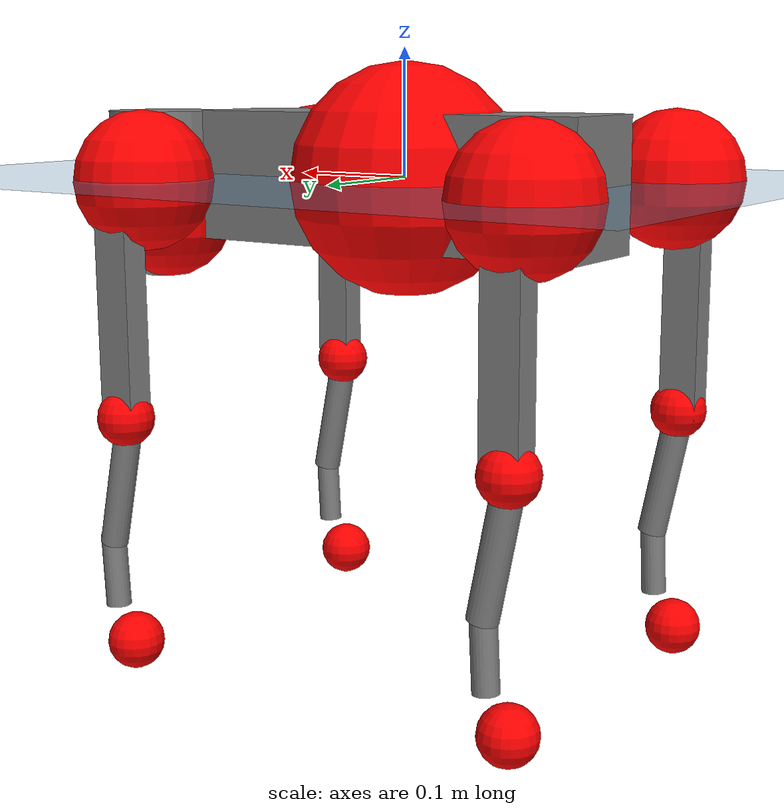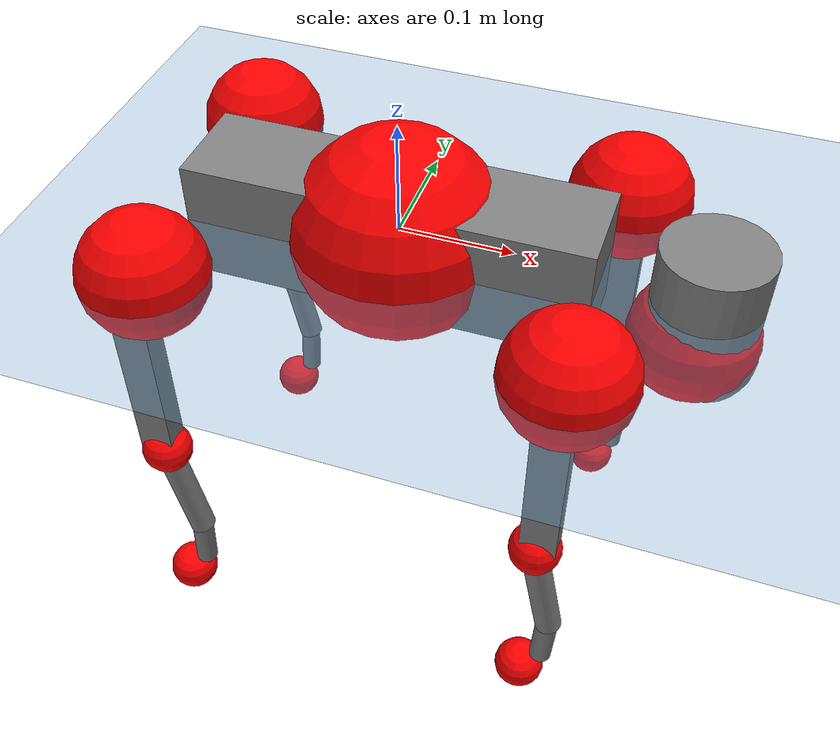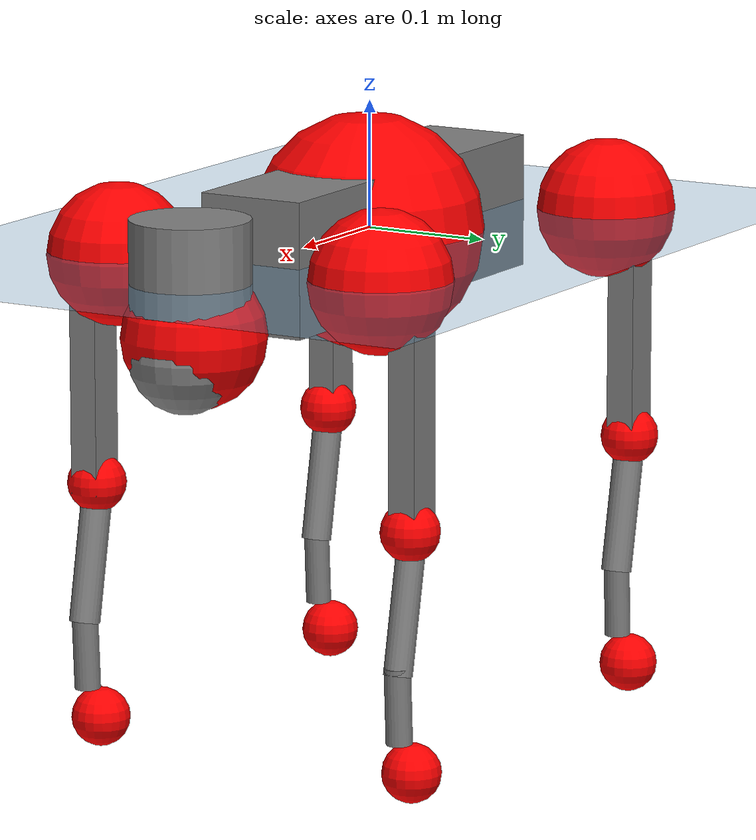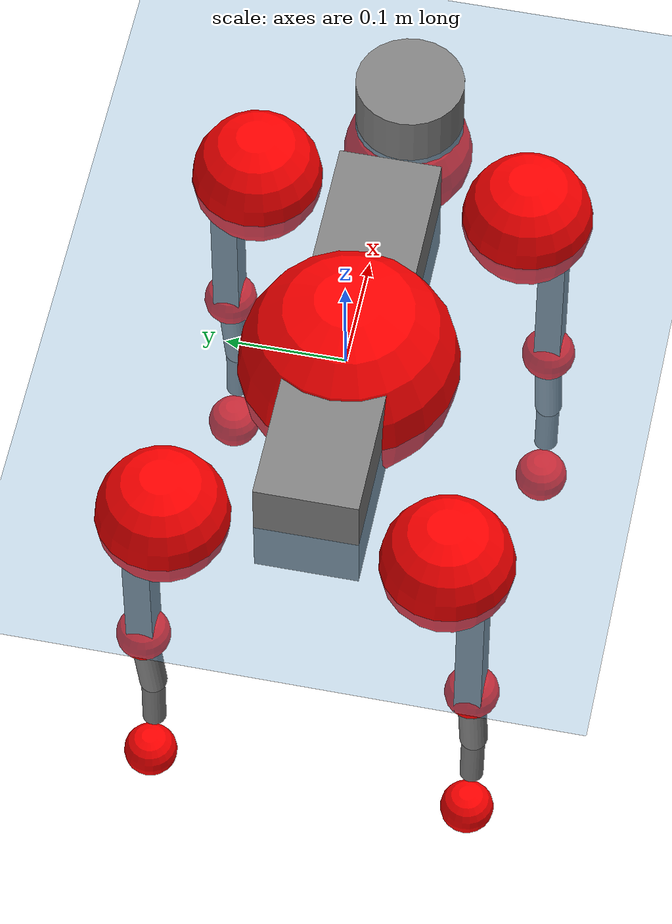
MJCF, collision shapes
<mujoco model="go2">
  <compiler angle="radian" assetdir="assets" balanceinertia="true" inertiafromgeom="false"/>

  <option timestep="0.005" density="1.2" viscosity="2e-05"/>

  <size nkey="1"/>

  <visual>
    <quality shadowsize="8192"/>
    <map shadowclip="0.5"/>
  </visual>

  <default>
    <default class="/">
      <geom contype="0" conaffinity="0" group="1" solref="-1000 -80"/>
      <site size="0.01 0.005 0.005" group="5"/>
      <general forcelimited="true" biastype="affine" gainprm="20" biasprm="0 -20 -0.5"/>
      <default class="go2">
        <joint armature="0.01" damping="0.01" frictionloss="0.2"/>
        <geom condim="1" margin="0.001"/>
        <default class="visual">
          <geom type="mesh" group="2"/>
        </default>
        <default class="collision">
          <geom group="3"/>
          <default class="foot">
            <geom size="0.022 0 0" condim="6" priority="1" friction="0.8 0.02 0.01" solimp="0.015 1 0.022"/>
          </default>
        </default>
        <default class="reward_collision_sphere">
          <geom group="5" rgba="1 0 0 1"/>
        </default>
      </default>
    </default>
  </default>

  <asset>
    <texture type="skybox" colorspace="auto" name="//unnamed_texture_0" builtin="gradient" rgb1="0.95 0.95 0.95" rgb2="0.95 0.95 0.95" width="100" height="600"/>
    <texture type="2d" colorspace="auto" name="texplane" builtin="checker" rgb1="0.345 0.575 0.748" rgb2="0.345 0.575 0.748" markrgb="1 1 1" width="512" height="512"/>
    <material name="MatPlane" class="/" texture="texplane" texuniform="true" texrepeat="2 2" specular="0.9"/>
    <material name="metal" class="/" rgba="0.9 0.95 0.95 1"/>
    <material name="black" class="/" rgba="0 0 0 1"/>
    <material name="white" class="/"/>
    <material name="gray" class="/" rgba="0.671705 0.692426 0.77427 1"/>
    <mesh name="base_0" class="/" file="base_0.obj"/>
    <mesh name="base_1" class="/" file="base_1.obj"/>
    <mesh name="base_2" class="/" file="base_2.obj"/>
    <mesh name="base_3" class="/" file="base_3.obj"/>
    <mesh name="base_4" class="/" file="base_4.obj"/>
    <mesh name="hip_0" class="/" file="hip_0.obj"/>
    <mesh name="hip_1" class="/" file="hip_1.obj"/>
    <mesh name="thigh_0" class="/" file="thigh_0.obj"/>
    <mesh name="thigh_1" class="/" file="thigh_1.obj"/>
    <mesh name="thigh_mirror_0" class="/" file="thigh_mirror_0.obj"/>
    <mesh name="thigh_mirror_1" class="/" file="thigh_mirror_1.obj"/>
    <mesh name="calf_0" class="/" file="calf_0.obj"/>
    <mesh name="calf_1" class="/" file="calf_1.obj"/>
    <mesh name="calf_mirror_0" class="/" file="calf_mirror_0.obj"/>
    <mesh name="calf_mirror_1" class="/" file="calf_mirror_1.obj"/>
    <mesh name="foot" class="/" file="foot.obj"/>
  </asset>

  <worldbody>
    <geom name="floor" class="/" size="100 100 0.125" type="plane" group="0" material="MatPlane"/>
    <light name="toplight_shadow" class="/" pos="0 0 5" dir="0.0990148 0.0990148 -0.990148" type="directional" ambient="0.04 0.04 0.04" diffuse="0.55 0.55 0.55" specular="0.12 0.12 0.12"/>
    <light name="toplight_fill" class="/" pos="0 0 5" dir="0.0990148 0.0990148 -0.990148" type="directional" castshadow="false" ambient="0.04 0.04 0.04" diffuse="0.3 0.3 0.3" specular="0.08 0.08 0.08"/>
    <body name="trunk" childclass="go2" pos="0.000293648 -0.00272037 -0.00178429" quat="0.999999 -0.000218594 0.00129446 0.000333438">
      <inertial pos="0.0161465 -0.000444938 -0.00224151" quat="-0.00562572 0.711537 0.0111747 0.702538" mass="5.5503" diaginertia="0.0646334 0.0885454 0.0130957"/>
      <joint name="//unnamed_joint_0" type="free" armature="0" damping="0" frictionloss="0"/>
      <geom name="//unnamed_geom_1" class="visual" material="black" mesh="base_0"/>
      <geom name="//unnamed_geom_2" class="visual" material="black" mesh="base_1"/>
      <geom name="//unnamed_geom_3" class="visual" material="black" mesh="base_2"/>
      <geom name="//unnamed_geom_4" class="visual" material="white" mesh="base_3"/>
      <geom name="//unnamed_geom_5" class="visual" material="gray" mesh="base_4"/>
      <geom name="trunk_1" class="collision" size="0.173597 0.0431454 0.0526051" type="box"/>
      <geom name="trunk_2" class="collision" size="0.0461448 0.0415303" pos="0.258412 0 0.00879665" type="cylinder"/>
      <geom name="trunk_3" class="collision" size="0.0433761" pos="0.265666 0 -0.0527799"/>
      <geom name="//unnamed_geom_9" class="reward_collision_sphere" size="0.0922896"/>
      <geom name="//unnamed_geom_10" class="reward_collision_sphere" size="0.0553738" pos="0.253878 0 -0.0395849"/>
      <site name="imu" pos="-0.0193181 -0.00512558 0.0321058" size="0.00922896"/>
      <camera name="track" pos="0 -1.96463 0" quat="0.707107 0.707107 0 0" mode="trackcom"/>
      <camera name="ego_camera" pos="0.282893 0 0.0395849" quat="-0.5 -0.5 0.5 0.5"/>
      <body name="FL_hip" pos="0.17351 0.0449762 -0.000407813" quat="1 9.35885e-05 6.21174e-05 6.16087e-05">
        <inertial pos="-0.00490316 -6.44247e-06 -0.00143773" quat="0.495787 0.50046 0.505941 0.497753" mass="0.532752" diaginertia="0.000553066 0.000531195 0.000258013"/>
        <joint name="FL_hip_joint" pos="0 0 0" axis="0.999892 -0.011302 -0.00939011" stiffness="0.00452335" range="-1.10654 1.04527" armature="0.00965164" damping="0.00826525" frictionloss="0.183407"/>
        <geom name="//unnamed_geom_11" class="visual" material="metal" mesh="hip_0"/>
        <geom name="//unnamed_geom_12" class="visual" material="gray" mesh="hip_1"/>
        <geom name="//unnamed_geom_13" class="collision" size="0.0424532 0.0184579" pos="0 0.0785852 0" quat="0.707107 0.707107 0 0" type="cylinder"/>
        <geom name="//unnamed_geom_14" class="reward_collision_sphere" size="0.0553738" pos="0 0.068762 0"/>
        <body name="FL_thigh" pos="0.00178388 0.0964329 -1.11279e-05" quat="1 -2.99347e-05 3.95392e-07 0.000139984">
          <inertial pos="-0.00263511 -0.0218053 -0.0280713" quat="0.827728 0.0914637 -0.0298535 0.55282" mass="0.938736" diaginertia="0.00357957 0.00539075 0.000464445"/>
          <joint name="FL_thigh_joint" pos="0 0 0" axis="0.0140215 0.999897 0.0031058" stiffness="0.0164494" range="-1.62432 3.46696" armature="0.00938094" damping="0.00677466" frictionloss="0.158383"/>
          <geom name="//unnamed_geom_15" class="visual" material="metal" mesh="thigh_0"/>
          <geom name="//unnamed_geom_16" class="visual" material="gray" mesh="thigh_1"/>
          <geom name="//unnamed_geom_17" class="collision" size="0.0982884 0.0113055 0.0156892" pos="0 0 -0.0936843" quat="0.707107 0 0.707107 0" type="box"/>
          <body name="FL_calf" pos="0.00119238 -0.00047047 -0.187726" quat="1 0.000372793 0.000140355 0.00039468">
            <inertial pos="0.00414487 -0.00336158 -0.126218" quat="0.705057 0.00741562 -0.00899981 0.709055" mass="0.187789" diaginertia="0.000879669 0.00131036 2.72764e-05"/>
            <joint name="FL_calf_joint" pos="0 0 0" axis="-0.00387374 0.999987 -0.00342812" stiffness="0.0124957" range="-2.72078 -0.794626" armature="0.00780401" damping="0" frictionloss="0.202638"/>
            <geom name="//unnamed_geom_18" class="visual" material="gray" mesh="calf_0"/>
            <geom name="//unnamed_geom_19" class="visual" material="black" mesh="calf_1"/>
            <geom name="FL_calf0" class="collision" size="0.0110748 0.0553738" pos="0.00725367 0 -0.0527799" quat="0.994493 0 -0.104807 0" type="cylinder"/>
            <geom name="//unnamed_geom_21" class="collision" size="0.0101519 0.0299941" pos="0.0181342 0 -0.13019" quat="0.999688 0 0.0249974 0" type="cylinder"/>
            <geom name="//unnamed_geom_22" class="visual" pos="0 0 -0.187369" quat="1 0 0 0" material="black" mesh="foot"/>
            <geom name="FL_foot" class="foot" size="0.0154885" pos="-0.00181342 0 -0.187369"/>
            <geom name="//unnamed_geom_24" class="reward_collision_sphere" size="0.0230724"/>
            <geom name="//unnamed_geom_25" class="reward_collision_sphere" size="0.0230724" pos="-0.00181342 0 -0.187369"/>
            <site name="FL_foot" class="foot" pos="-0.00181342 0 -0.187369" size="0.00922896"/>
          </body>
        </body>
      </body>
      <body name="FR_hip" pos="0.174998 -0.0480514 -0.00112655" quat="1 6.98111e-07 -5.97241e-05 6.66348e-05">
        <inertial pos="-0.00402422 0.000504798 -0.00237237" quat="0.493755 0.505768 0.504401 0.495967" mass="0.514684" diaginertia="0.000521123 0.000545684 0.000257967"/>
        <joint name="FR_hip_joint" pos="0 0 0" axis="0.999901 -0.00164435 0.0139464" stiffness="0.0045101" range="-1.0594 1.08673" armature="0.00802428" damping="0.0109061" frictionloss="0.198834"/>
        <geom name="//unnamed_geom_26" class="visual" pos="0 8.94243e-10 3.83559e-08" quat="4.63268e-05 1 0 0" material="metal" mesh="hip_0"/>
        <geom name="//unnamed_geom_27" class="visual" pos="0 1.44967e-09 -9.48689e-08" quat="4.63268e-05 1 0 0" material="gray" mesh="hip_1"/>
        <geom name="//unnamed_geom_28" class="collision" size="0.0424532 0.0184579" pos="0 -0.0785852 0" quat="0.707107 0.707107 0 0" type="cylinder"/>
        <geom name="//unnamed_geom_29" class="reward_collision_sphere" size="0.0553738" pos="0 -0.068762 0"/>
        <body name="FR_thigh" pos="-0.00123421 -0.0936798 0.0022288" quat="1 0.000263714 -9.00773e-05 0.000205981">
          <inertial pos="-0.000418382 0.0192933 -0.0277016" quat="0.553769 -0.0157625 0.075185 0.829119" mass="0.920429" diaginertia="0.00350973 0.00533363 0.000462048"/>
          <joint name="FR_thigh_joint" pos="0 0 0" axis="-0.00240122 -0.999995 0.00185936" range="-3.47388 1.60631" armature="0.00861508" damping="0.0183407" frictionloss="0.158829"/>
          <geom name="//unnamed_geom_30" class="visual" material="metal" mesh="thigh_mirror_0"/>
          <geom name="//unnamed_geom_31" class="visual" material="gray" mesh="thigh_mirror_1"/>
          <geom name="//unnamed_geom_32" class="collision" size="0.0982884 0.0113055 0.0156892" pos="0 0 -0.0936843" quat="0.707107 0 0.707107 0" type="box"/>
          <body name="FR_calf" pos="-0.00315423 2.9749e-05 -0.184994" quat="1 0.000370723 5.16598e-05 -0.000119447">
            <inertial pos="0.00294103 0.0033776 -0.124316" quat="0.695546 -0.00945403 -0.00147963 0.718418" mass="0.19009" diaginertia="0.000889438 0.00138717 2.7098e-05"/>
            <joint name="FR_calf_joint" pos="0 0 0" axis="0.000184759 -1 -0.000384835" range="0.87214 2.74837" armature="0.00928291" damping="0.000566995" frictionloss="0.164001"/>
            <geom name="//unnamed_geom_33" class="visual" material="gray" mesh="calf_mirror_0"/>
            <geom name="//unnamed_geom_34" class="visual" material="black" mesh="calf_mirror_1"/>
            <geom name="FR_calf0" class="collision" size="0.0119976 0.0553738" pos="0.00906708 0 -0.0527799" quat="0.995004 0 -0.0998334 0" type="cylinder"/>
            <geom name="//unnamed_geom_36" class="collision" size="0.0101519 0.0299941" pos="0.0181342 0 -0.13019" quat="0.999688 0 0.0249974 0" type="cylinder"/>
            <geom name="//unnamed_geom_37" class="visual" pos="0 0 -0.187369" quat="1 0 0 0" material="black" mesh="foot"/>
            <geom name="FR_foot" class="foot" size="0.020551" pos="-0.00181342 0 -0.187369"/>
            <geom name="//unnamed_geom_39" class="reward_collision_sphere" size="0.0230724"/>
            <geom name="//unnamed_geom_40" class="reward_collision_sphere" size="0.0230724" pos="-0.00181342 0 -0.187369"/>
            <site name="FR_foot" class="foot" pos="-0.00181342 0 -0.187369" size="0.00922896"/>
          </body>
        </body>
      </body>
      <body name="RL_hip" pos="-0.174967 0.0483288 0.000221602" quat="1 -0.000255998 -1.29755e-05 0.000144544">
        <inertial pos="0.00545302 0.001775 0.00285431" quat="0.502887 0.497023 0.496941 0.503113" mass="0.51689" diaginertia="0.000522612 0.000510852 0.000254032"/>
        <joint name="RL_hip_joint" pos="0 0 0" axis="-0.999855 -0.0129815 -0.0110613" stiffness="0.00517266" range="-1.01252 0.998322" armature="0.00884183" damping="0.013157" frictionloss="0.206309"/>
        <geom name="//unnamed_geom_41" class="visual" pos="-2.35591e-10 0 -4.61813e-08" quat="4.63268e-05 0 1 0" material="metal" mesh="hip_0"/>
        <geom name="//unnamed_geom_42" class="visual" pos="-3.81921e-10 0 -4.09562e-08" quat="4.63268e-05 0 1 0" material="gray" mesh="hip_1"/>
        <geom name="//unnamed_geom_43" class="collision" size="0.0424532 0.0184579" pos="0 0.0785852 0" quat="0.707107 0.707107 0 0" type="cylinder"/>
        <geom name="//unnamed_geom_44" class="reward_collision_sphere" size="0.0553738" pos="0 0.068762 0"/>
        <body name="RL_thigh" pos="-0.000436661 0.090451 0.00282373" quat="1 -2.72793e-05 1.97748e-05 -0.000598583">
          <inertial pos="-0.00294074 -0.0222139 -0.0265101" quat="0.831363 0.0917229 -0.0112716 0.547992" mass="0.901878" diaginertia="0.00352786 0.00554791 0.000473295"/>
          <joint name="RL_thigh_joint" pos="0 0 0" axis="-0.000500016 1 -0.000540268" range="-0.513445 4.55713" armature="0.0104684" damping="0.0207323" frictionloss="0.158585"/>
          <geom name="//unnamed_geom_45" class="visual" material="metal" mesh="thigh_0"/>
          <geom name="//unnamed_geom_46" class="visual" material="gray" mesh="thigh_1"/>
          <geom name="//unnamed_geom_47" class="collision" size="0.0982884 0.0113055 0.0156892" pos="0 0 -0.0936843" quat="0.707107 0 0.707107 0" type="box"/>
          <body name="RL_calf" pos="-0.00224968 -0.000135163 -0.185714" quat="0.999999 -0.000382223 -0.000860139 -0.00114961">
            <inertial pos="0.00492057 0.00139852 -0.123592" quat="0.708757 0.000208505 -0.00860334 0.7054" mass="0.185695" diaginertia="0.000884228 0.00129734 2.71972e-05"/>
            <joint name="RL_calf_joint" pos="0 0 0" axis="0.000336956 0.999998 0.00195982" stiffness="0.00378447" range="-2.71376 -0.834059" armature="0.00932064" damping="0.0146711" frictionloss="0.159077"/>
            <geom name="//unnamed_geom_48" class="visual" material="gray" mesh="calf_0"/>
            <geom name="//unnamed_geom_49" class="visual" material="black" mesh="calf_1"/>
            <geom name="RL_calf0" class="collision" size="0.0119976 0.0553738" pos="0.00906708 0 -0.0527799" quat="0.995004 0 -0.0998334 0" type="cylinder"/>
            <geom name="//unnamed_geom_51" class="collision" size="0.0101519 0.0299941" pos="0.0181342 0 -0.13019" quat="0.999688 0 0.0249974 0" type="cylinder"/>
            <geom name="//unnamed_geom_52" class="visual" pos="0 0 -0.187369" quat="1 0 0 0" material="black" mesh="foot"/>
            <geom name="RL_foot" class="foot" size="0.0174968" pos="-0.00181342 0 -0.187369"/>
            <geom name="//unnamed_geom_54" class="reward_collision_sphere" size="0.0230724"/>
            <geom name="//unnamed_geom_55" class="reward_collision_sphere" size="0.0230724" pos="-0.00181342 0 -0.187369"/>
            <site name="RL_foot" class="foot" pos="-0.00181342 0 -0.187369" size="0.00922896"/>
          </body>
        </body>
      </body>
      <body name="RR_hip" pos="-0.175944 -0.0470985 7.34448e-05" quat="1 4.00473e-05 -0.000134955 -2.82771e-05">
        <inertial pos="0.00384194 -0.00348254 0.00083524" quat="0.49927 0.496955 0.498273 0.505458" mass="0.515312" diaginertia="0.000522302 0.000537962 0.000243227"/>
        <joint name="RR_hip_joint" pos="0 0 0" axis="-0.999994 0.00325693 0.000808728" stiffness="0.00615175" range="-1.0557 1.10147" armature="0.00979782" damping="0.00554571" frictionloss="0.210472"/>
        <geom name="//unnamed_geom_56" class="visual" pos="2.38209e-10 8.94243e-10 -8.45372e-08" quat="2.14617e-09 4.63268e-05 4.63268e-05 -1" material="metal" mesh="hip_0"/>
        <geom name="//unnamed_geom_57" class="visual" pos="3.75447e-10 1.44967e-09 5.39127e-08" quat="2.14617e-09 4.63268e-05 4.63268e-05 -1" material="gray" mesh="hip_1"/>
        <geom name="//unnamed_geom_58" class="collision" size="0.0424532 0.0184579" pos="0 -0.0785852 0" quat="0.707107 0.707107 0 0" type="cylinder"/>
        <geom name="//unnamed_geom_59" class="reward_collision_sphere" size="0.0553738" pos="0 -0.068762 0"/>
        <body name="RR_thigh" pos="-0.00254899 -0.0920488 -0.00381956" quat="0.999999 0.000826814 -5.48898e-05 -0.000700985">
          <inertial pos="-0.00259835 0.0195863 -0.0280072" quat="0.551979 -0.0196767 0.0849501 0.829286" mass="0.935552" diaginertia="0.00371976 0.0052961 0.000452179"/>
          <joint name="RR_thigh_joint" pos="0 0 0" axis="-0.00273 -0.999986 -0.00447516" stiffness="0.00733075" range="-4.55833 0.525495" armature="0.00899722" damping="0.0200778" frictionloss="0.193749"/>
          <geom name="//unnamed_geom_60" class="visual" material="metal" mesh="thigh_mirror_0"/>
          <geom name="//unnamed_geom_61" class="visual" material="gray" mesh="thigh_mirror_1"/>
          <geom name="//unnamed_geom_62" class="collision" size="0.0982884 0.0113055 0.0156892" pos="0 0 -0.0936843" quat="0.707107 0 0.707107 0" type="box"/>
          <body name="RR_calf" pos="0.00336469 -0.000660609 -0.186301" quat="1 2.29864e-05 -0.000126886 -9.96266e-05">
            <inertial pos="0.00271982 6.58467e-05 -0.125148" quat="0.703493 -0.00446346 0.00146983 0.710686" mass="0.196522" diaginertia="0.000932671 0.00138688 2.83264e-05"/>
            <joint name="RR_calf_joint" pos="0 0 0" axis="-0.0078777 -0.999966 -0.00251802" stiffness="0.000173157" range="0.866738 2.7791" armature="0.00952642" damping="0.0128135" frictionloss="0.210558"/>
            <geom name="//unnamed_geom_63" class="visual" material="gray" mesh="calf_mirror_0"/>
            <geom name="//unnamed_geom_64" class="visual" material="black" mesh="calf_mirror_1"/>
            <geom name="RR_calf0" class="collision" size="0.0119976 0.0553738" pos="0.00906708 0 -0.0527799" quat="0.995004 0 -0.0998334 0" type="cylinder"/>
            <geom name="//unnamed_geom_66" class="collision" size="0.0101519 0.0299941" pos="0.0181342 0 -0.13019" quat="0.999688 0 0.0249974 0" type="cylinder"/>
            <geom name="//unnamed_geom_67" class="visual" pos="0 0 -0.187369" quat="1 0 0 0" material="black" mesh="foot"/>
            <geom name="RR_foot" class="foot" size="0.0202665" pos="-0.00181342 0 -0.187369"/>
            <geom name="//unnamed_geom_69" class="reward_collision_sphere" size="0.0230724"/>
            <geom name="//unnamed_geom_70" class="reward_collision_sphere" size="0.0230724" pos="-0.00181342 0 -0.187369"/>
            <site name="RR_foot" class="foot" pos="-0.00181342 0 -0.187369" size="0.00922896"/>
          </body>
        </body>
      </body>
    </body>
  </worldbody>

  <contact>
    <pair class="/" geom1="floor" geom2="FL_foot" name="//unnamed_contact_0"/>
    <pair class="/" geom1="floor" geom2="FR_foot" name="//unnamed_contact_1"/>
    <pair class="/" geom1="floor" geom2="RL_foot" name="//unnamed_contact_2"/>
    <pair class="/" geom1="floor" geom2="RR_foot" name="//unnamed_contact_3"/>
  </contact>

  <actuator>
    <general name="FL_hip" class="/" joint="FL_hip_joint" forcerange="-24.0423 24.0423" gainprm="18.6293" biasprm="0 -18.6293 -0.451237"/>
    <general name="FL_thigh" class="/" joint="FL_thigh_joint" forcerange="-21.4454 21.4454" gainprm="18.6293" biasprm="0 -18.6293 -0.451237"/>
    <general name="FL_calf" class="/" joint="FL_calf_joint" forcerange="-40.1216 40.1216" gainprm="18.6293" biasprm="0 -18.6293 -0.451237"/>
    <general name="FR_hip" class="/" joint="FR_hip_joint" forcerange="-19.5609 19.5609" gainprm="18.6293" biasprm="0 -18.6293 -0.451237"/>
    <general name="FR_thigh" class="/" joint="FR_thigh_joint" forcerange="-22.5667 22.5667" gainprm="18.6293" biasprm="0 -18.6293 -0.451237"/>
    <general name="FR_calf" class="/" joint="FR_calf_joint" forcerange="-37.7276 37.7276" gainprm="18.6293" biasprm="0 -18.6293 -0.451237"/>
    <general name="RL_hip" class="/" joint="RL_hip_joint" forcerange="-20.2816 20.2816" gainprm="18.6293" biasprm="0 -18.6293 -0.451237"/>
    <general name="RL_thigh" class="/" joint="RL_thigh_joint" forcerange="-22.3973 22.3973" gainprm="18.6293" biasprm="0 -18.6293 -0.451237"/>
    <general name="RL_calf" class="/" joint="RL_calf_joint" forcerange="-44.846 44.846" gainprm="18.6293" biasprm="0 -18.6293 -0.451237"/>
    <general name="RR_hip" class="/" joint="RR_hip_joint" forcerange="-19.6521 19.6521" gainprm="18.6293" biasprm="0 -18.6293 -0.451237"/>
    <general name="RR_thigh" class="/" joint="RR_thigh_joint" forcerange="-23.682 23.682" gainprm="18.6293" biasprm="0 -18.6293 -0.451237"/>
    <general name="RR_calf" class="/" joint="RR_calf_joint" forcerange="-44.0075 44.0075" gainprm="18.6293" biasprm="0 -18.6293 -0.451237"/>
  </actuator>

  <sensor>
    <gyro site="imu" name="imu_angular_velocity"/>
    <velocimeter site="imu" name="imu_linear_velocity"/>
    <framelinvel objtype="site" objname="FL_foot" name="FL_foot_global_linear_velocity"/>
    <framelinvel objtype="site" objname="FR_foot" name="FR_foot_global_linear_velocity"/>
    <framelinvel objtype="site" objname="RL_foot" name="RL_foot_global_linear_velocity"/>
    <framelinvel objtype="site" objname="RR_foot" name="RR_foot_global_linear_velocity"/>
  </sensor>

  <keyframe>
    <key name="home" qpos="0 0 0.325 1 0 0 0 0.1 0.8 -1.5 -0.1 -0.8 1.5 -0.1 0.8 -1.5 0.1 -0.8 1.5"/>
  </keyframe>
</mujoco>
